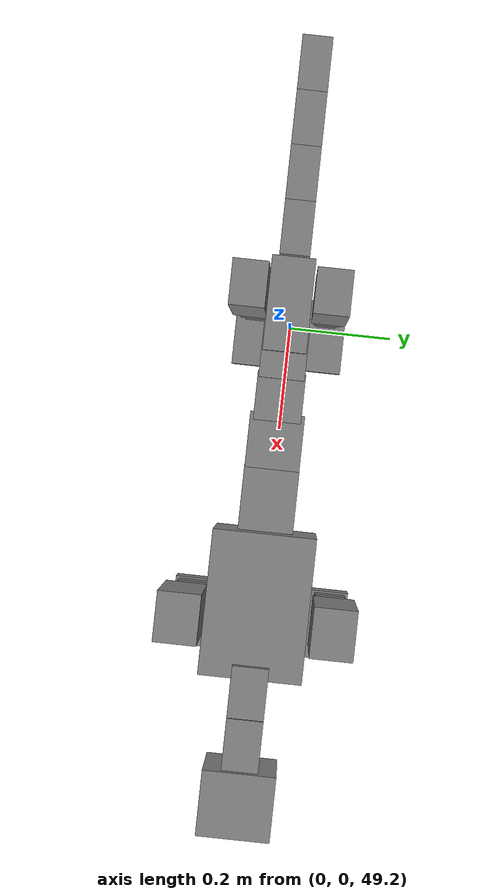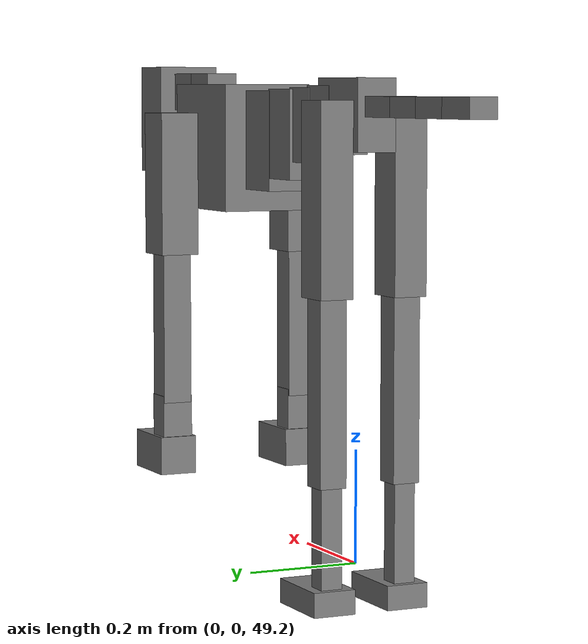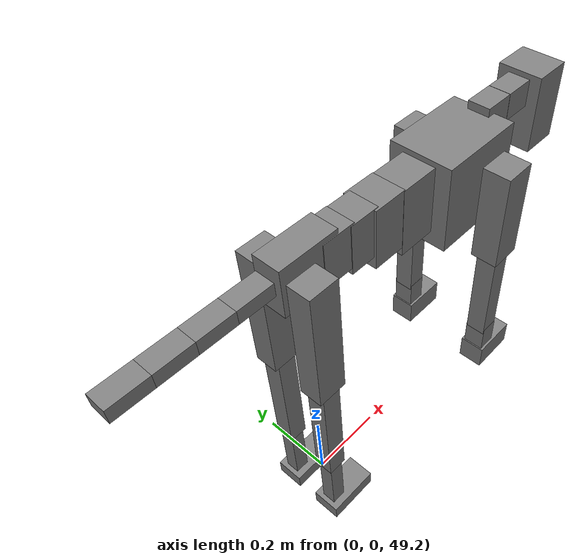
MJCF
<mujoco model="dog">

    <default>
        <joint armature="0.02" stiffness="1" damping="0.2" limited="true"/>
        <geom condim="3" friction="1 0.05 0.05" margin="0.01"/>
        <motor ctrllimited="true" ctrlrange="-1.0 1.0" forcelimited="true" gear="50"/>
    </default>

    <compiler inertiafromgeom="true" angle="radian"/>

    <option timestep="0.016" iterations="50" tolerance="1e-10" solver="Newton" jacobian="dense" cone="pyramidal"/>

    <size nconmax="20000" njmax="60000" nstack="5000000"/>
    <visual>
        <map force="0.1" zfar="30"/>
        <rgba haze="0.15 0.25 0.35 1"/>
        <quality shadowsize="2048"/>
        <global offwidth="800" offheight="800"/>
    </visual>

    <asset>
        <texture type="skybox" builtin="gradient" rgb1="0.3 0.5 0.7" rgb2="0 0 0" width="512" height="512"/>
        <texture name="texplane" type="2d" builtin="checker" rgb1=".2 .3 .4" rgb2=".1 0.15 0.2" width="512" height="512"
                 mark="cross" markrgb=".8 .8 .8"/>
        <texture name="texgeom" type="cube" builtin="flat" mark="cross" width="127" height="1278" rgb1="0.8 0.6 0.4"
                 rgb2="0.8 0.6 0.4" markrgb="1 1 1" random="0.01"/>

        <material name="matplane" reflectance="0.3" texture="texplane" texrepeat="1 1" texuniform="true"/>
        <material name="matgeom" texture="texgeom" texuniform="true" rgba="0.8 0.6 .4 1"/>
    </asset>

    <worldbody>
        <geom name="floor" pos="0 0 0" size="0 0 .25" type="plane" material="matplane" condim="3"/>

        <light directional="false" diffuse=".2 .2 .2" specular="0 0 0" pos="0 0 5" dir="0 0 -1" castshadow="false"/>
        <light mode="targetbodycom" target="torso" directional="false" diffuse=".8 .8 .8" specular="0.3 0.3 0.3"
               pos="0 0 4.0" dir="0 0 -1"/>

        <body name="root" pos="0 0 50">
            <freejoint name="root_1"/>
            <geom type="box" pos="0 0 -0.02" size="0.0774  0.0358  0.063" density="2030"/>

            <body name="spine1" pos="0.054 0 0">
                <joint name="spine1_y" axis="0 1 0" range="0 0.7" limited="true"/>
                <geom type="box" pos="0.02375 0 -0.03" size="0.04375  0.0375  0.05985" density="2030"/>

                <body name="spine2" pos="0.0612 0 0">
                    <joint name="spine2_y" axis="0 1 0" range="-0.15 0.15" limited="true"/>
                    <geom type="box" pos="0.03555  0  -0.04" size="0.04055  0.039  0.06615" density="2030"/>

                    <body name="spine3" pos="0.0730 0 0">
                        <joint name="spine3_y" axis="0 1 0" range="-0.15 0.15" limited="true"/>
                        <geom type="box" pos="0.03555  0  -0.057" size="0.04555  0.0445  0.081" density="2030"/>

                        <body name="spine4" pos="0.0780 0 0">
                            <joint name="spine4_y" axis="0 1 0" range="-0.15 0.15" limited="true"/>
                            <geom type="box" pos="0.05265  0  -0.07" size="0.05265  0.045  0.09135" density="2030"/>

                            <body name="torso" pos="0.1082 0 0">
                                <joint name="torso_y" axis="0 1 0" range="-0.15 0.15" limited="true"/>
                                <geom type="box" pos="0.11925  0  -0.085" size="0.11925  0.085  0.11745"
                                      density="2030"/>

                                <body name="neck1" pos="0.2160  0   0.0180">
                                    <joint name="neck1_y" axis="0 1 0" range="-1.2  -1" limited="true"/>
                                    <geom type="box" pos="0.0423  0  0" size="0.0423  0.03  0.036" density="2325"/>

                                    <body name="neck2" pos="0.0853  0  0">
                                        <joint name="neck2_y" axis="0 1 0" range="0.1  0" limited="true"/>
                                        <geom type="box" pos="0.0423  0  0" size="0.0423  0.03  0.036" density="2325"/>

                                        <body name="head" pos="0.0853  0  0">
                                            <joint name="head_y" axis="0 1 0" range="-0.3  -0.2" limited="true"/>
                                            <geom type="box" pos="0.0531  0  -0.055" size="0.0531  0.06  0.1044"
                                                  density="4030"/>

                                        </body>
                                    </body>
                                </body>

                                <body name="front_shoulder" pos="0.156  0   -0.0480">
                                    <joint name="front_shoulder_y" axis="0 1 0" range="-1 1.5" limited="true"/>
                                    <geom type="box" pos="0 0.13 -0.1068" size="0.0428  0.0366  0.1335" density="1158"/>
                                    <geom type="box" pos="0 -0.13 -0.1068" size="0.0428  0.0366  0.1335"
                                          density="1158"/>

                                    <body name="front_elbow" pos="0  0  -0.2137">
                                        <joint name="front_elbow_y" axis="0 1 0" range="-2 0" limited="true"/>
                                        <geom type="box" pos="0 0.13 -0.1548" size="0.0268  0.0274  0.1548"
                                              density="1081"/>
                                        <geom type="box" pos="0 -0.13 -0.1548" size="0.0268  0.0274  0.1548"
                                              density="1081"/>

                                        <body name="front_wrist" pos="0  0  -0.3097">
                                            <joint name="front_wrist_y" axis="0 1 0" range="-0.2 0" limited="true"/>
                                            <geom type="box" pos="0 0.13 -0.0400" size="0.0259  0.0288  0.0531"
                                                  density="1664"/>
                                            <geom type="box" pos="0 -0.13 -0.0400" size="0.0259  0.0288  0.0531"
                                                  density="1664"/>

                                            <body name="front_finger_end" pos="0  0  -0.0800">
                                                <joint name="front_finger_y" axis="0 1 0" range="-0.4 1"
                                                       limited="true"/>
                                                <geom type="box" pos="0.0353  0.13  -0.0208"
                                                      size="0.0647  0.0353  0.0358" density="1515"/>
                                                <geom type="box" pos="0.0353  -0.13  -0.0208"
                                                      size="0.0647  0.0353  0.0358" density="1515"/>

                                            </body>

                                        </body>
                                    </body>
                                </body>

                            </body>
                        </body>
                    </body>
                </body>
            </body>

            <body name="back_hip" pos="-0.03 0 -0.018">
                <joint name="back_hip_y" axis="0 1 0" range="-1.5 0.3" limited="true"/>
                <geom type="box" pos="0 0.07 -0.1452" size="0.0385  0.0302  0.1680" density="1154"/>
                <geom type="box" pos="0 -0.07 -0.1452" size="0.0385  0.0302  0.1680" density="1154"/>

                <body name="back_knee" pos="0  0  -0.2904">
                    <joint name="back_knee_y" axis="0 1 0" range="0 2.8" limited="true"/>
                    <geom type="box" pos="0 0.07 -0.1660" size="0.0251  0.0247  0.1816" density="1227"/>
                    <geom type="box" pos="0 -0.07 -0.1660" size="0.0251  0.0247  0.1816" density="1227"/>

                    <body name="back_ankle" pos="0  0  -0.3321">
                        <joint name="back_ankle_y" axis="0 1 0" range="-2.2 0" limited="true"/>
                        <geom type="box" pos="0 0.07 -0.1031" size="0.0194  0.0194  0.1143" density="1284"/>
                        <geom type="box" pos="0 -0.07 -0.1031" size="0.0194  0.0194  0.1143" density="1284"/>

                        <body name="back_toe_end" pos="0  0  -0.2062">
                            <joint name="back_toe_y" axis="0 1 0" range="-0.4 1" limited="true"/>
                            <geom type="box" pos="0.0386  0.07  -0.0067" size="0.0708  0.0386  0.0217" density="1515"/>
                            <geom type="box" pos="0.0386  -0.07  -0.0067" size="0.0708  0.0386  0.0217" density="1515"/>

                        </body>
                    </body>
                </body>
            </body>

            <body name="tail1" pos="-0.074 0 -0.006">
                <joint name="tail1_y" axis="0 1 0" range="-0.2 0.2" limited="true"/>
                <geom type="box" pos="-0.0536  0  0" size="0.045  0.025  0.0175" density="1587"/>

                <body name="tail2" pos="-0.09 0 0">
                    <joint name="tail2_y" axis="0 1 0" range="-0.2 0.2" limited="true"/>
                    <geom type="box" pos="-0.0536  0  0" size="0.045  0.025  0.0175" density="1587"/>

                    <body name="tail3" pos="-0.09 0 0">
                        <joint name="tail3_y" axis="0 1 0" range="-0.2 0.2" limited="true"/>
                        <geom type="box" pos="-0.0536  0  0" size="0.045  0.025  0.0175" density="1587"/>

                        <body name="tail4" pos="-0.09 0 0">
                            <joint name="tail4_y" axis="0 1 0" range="-0.2 0.2" limited="true"/>
                            <geom type="box" pos="-0.0536  0  0" size="0.045  0.025  0.0175" density="1587"/>

                        </body>
                    </body>
                </body>
            </body>
        </body>
    </worldbody>

    <actuator>
        <motor joint="spine1_y" forcerange="-150 150     "/>
        <motor joint="spine2_y" forcerange="-150 150     "/>
        <motor joint="spine3_y" forcerange="-150 150     "/>
        <motor joint="spine4_y" forcerange="-150 150     "/>
        <motor joint="torso_y" forcerange="-150 150     "/>
        <motor joint="neck1_y" forcerange="-100 100       "/>
        <motor joint="neck2_y" forcerange="-100 100       "/>
        <motor joint="head_y" forcerange="-150 150       "/>
        <motor joint="front_shoulder_y" forcerange="-154.92 188.78"/>
        <motor joint="front_elbow_y" forcerange="-130.70 168.84"/>
        <motor joint="front_wrist_y" forcerange="-126.65 103.62"/>
        <motor joint="front_finger_y" forcerange="-79.15 68.95"/>
        <motor joint="back_hip_y" forcerange="-313.20 288.95"/>
        <motor joint="back_knee_y" forcerange="-347.63 211.81"/>
        <motor joint="back_angle_y" forcerange="-114.00 96.03"/>
        <motor joint="back_toe_y" forcerange="-97.33 131.46"/>
        <motor joint="tail1_y" forcerange="-50 50     "/>
        <motor joint="tail2_y" forcerange="-50 50     "/>
        <motor joint="tail3_y" forcerange="-50 50     "/>
        <motor joint="tail4_y" forcerange="-50 50     "/>
    </actuator>
</mujoco>
